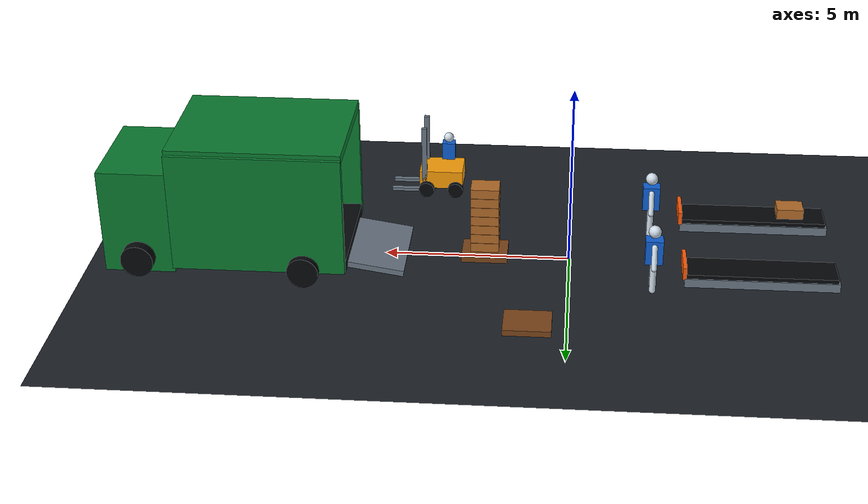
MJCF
<mujoco model="warehouse_palletizing_truck_loading_capability_v1">
  <compiler angle="degree"/>
  <option timestep="0.01" gravity="0 0 -9.81"/>
  <statistic center="0 0 1.2" extent="12"/>
  <visual><global offwidth="960" offheight="540"/><headlight ambient="0.42 0.42 0.44" diffuse="0.86 0.86 0.86"/></visual>
  <default><geom contype="0" conaffinity="0"/></default>
  <asset>
    <texture name="floor_tex" type="2d" builtin="checker" rgb1="0.08 0.10 0.13" rgb2="0.14 0.16 0.19" width="256" height="256"/>
    <material name="floor" texture="floor_tex" texrepeat="14 9"/>
    <material name="robot" rgba="0.06 0.38 0.84 1"/>
    <material name="shell" rgba="0.80 0.85 0.90 1"/>
    <material name="belt" rgba="0.02 0.025 0.035 1"/>
    <material name="steel" rgba="0.42 0.47 0.52 1"/>
    <material name="box" rgba="0.70 0.42 0.16 1"/>
    <material name="pallet" rgba="0.48 0.27 0.10 1"/>
    <material name="yellow" rgba="0.98 0.62 0.03 1"/>
    <material name="green" rgba="0.04 0.48 0.19 1"/>
    <material name="dark" rgba="0.02 0.03 0.04 1"/>
  </asset>
  <worldbody>
    <light pos="-2 -4 11" dir="0.1 0.2 -1"/>
    <geom type="plane" size="13 7 0.1" material="floor" contype="1" conaffinity="1"/>
    <camera name="overview" pos="-15 -15 10" xyaxes="0.73 -0.68 0 0.38 0.41 0.83"/>
    <camera name="pallet" pos="-1 -9 5" xyaxes="1 0 0 0 0.43 0.90"/>
    <camera name="truck" pos="11 -9 5.5" xyaxes="0.48 0.88 0 -0.39 0.21 0.90"/>

    <!-- Two representative production lanes; the full concept scales by repeating this cell. -->
    <geom type="box" pos="-5 -1.5 0.56" size="2.0 0.50 0.12" material="steel"/>
    <geom type="box" pos="-5 -1.5 0.73" size="1.95 0.46 0.055" material="belt"/>
    <geom type="box" pos="-3.0 -1.5 0.82" size="0.05 0.50 0.18" rgba="1 0.35 0.02 1"/>
    <geom type="box" pos="-5 1.5 0.56" size="2.0 0.50 0.12" material="steel"/>
    <geom type="box" pos="-5 1.5 0.73" size="1.95 0.46 0.055" material="belt"/>
    <geom type="box" pos="-3.0 1.5 0.82" size="0.05 0.50 0.18" rgba="1 0.35 0.02 1"/>

    <!-- Open-backed green truck with cargo bay, cab, wheels and loading ramp. -->
    <geom type="box" pos="8.2 0 0.45" size="2.3 1.7 0.15" material="dark"/>
    <geom type="box" pos="8.2 -1.75 2.0" size="2.3 0.10 1.65" material="green"/>
    <geom type="box" pos="8.2 1.75 2.0" size="2.3 0.10 1.65" material="green"/>
    <geom type="box" pos="8.2 0 3.65" size="2.3 1.75 0.12" material="green"/>
    <geom type="box" pos="10.45 0 2.0" size="0.05 1.55 1.40" material="dark"/>
    <geom type="box" pos="11.5 0 1.45" size="0.95 1.45 1.45" material="green"/>
    <geom type="box" pos="11.1 -1.46 1.95" size="0.45 0.035 0.42" rgba="0.08 0.30 0.38 1"/>
    <geom type="box" pos="5.2 0 0.20" size="0.80 1.25 0.08" material="steel" euler="0 -9 0"/>
    <geom type="cylinder" pos="7.0 -1.90 0.45" size="0.42 0.16" euler="90 0 0" material="dark"/>
    <geom type="cylinder" pos="7.0 1.90 0.45" size="0.42 0.16" euler="90 0 0" material="dark"/>
    <geom type="cylinder" pos="11.5 -1.60 0.45" size="0.44 0.16" euler="90 0 0" material="dark"/>
    <geom type="cylinder" pos="11.5 1.60 0.45" size="0.44 0.16" euler="90 0 0" material="dark"/>

    <body name="worker_1" mocap="true" pos="-2.2 -1.5 0">
      <geom type="box" pos="0 0 1.22" size="0.23 0.18 0.34" material="robot"/>
      <geom type="sphere" pos="0 0 1.77" size="0.17" material="shell"/>
      <geom type="capsule" fromto="0 -0.25 1.44 0 -0.46 0.92" size="0.075" material="shell"/>
      <geom type="capsule" fromto="0 0.25 1.44 0 0.46 0.92" size="0.075" material="shell"/>
      <geom type="capsule" fromto="0 -0.11 0.90 0 -0.15 0.10" size="0.085" material="shell"/>
      <geom type="capsule" fromto="0 0.11 0.90 0 0.15 0.10" size="0.085" material="shell"/>
    </body>
    <body name="worker_2" mocap="true" pos="-2.2 1.5 0">
      <geom type="box" pos="0 0 1.22" size="0.23 0.18 0.34" material="robot"/>
      <geom type="sphere" pos="0 0 1.77" size="0.17" material="shell"/>
      <geom type="capsule" fromto="0 -0.25 1.44 0 -0.46 0.92" size="0.075" material="shell"/>
      <geom type="capsule" fromto="0 0.25 1.44 0 0.46 0.92" size="0.075" material="shell"/>
      <geom type="capsule" fromto="0 -0.11 0.90 0 -0.15 0.10" size="0.085" material="shell"/>
      <geom type="capsule" fromto="0 0.11 0.90 0 0.15 0.10" size="0.085" material="shell"/>
    </body>
    <body name="active_carton" mocap="true" pos="-6.0 -1.5 0.95"><geom type="box" size="0.36 0.28 0.14" material="box"/></body>
    <body name="pallet_load" mocap="true" pos="2.3 0 0">
      <geom type="box" pos="0 0 0.16" size="0.62 0.50 0.08" material="pallet"/>
      <geom name="stack_1" type="box" pos="0 0 0.43" size="0.38 0.30 0.13" material="box"/>
      <geom name="stack_2" type="box" pos="0 0 0.70" size="0.38 0.30 0.13" material="box"/>
      <geom name="stack_3" type="box" pos="0 0 0.97" size="0.38 0.30 0.13" material="box"/>
      <geom name="stack_4" type="box" pos="0 0 1.24" size="0.38 0.30 0.13" material="box"/>
      <geom name="stack_5" type="box" pos="0 0 1.51" size="0.38 0.30 0.13" material="box"/>
      <geom name="stack_6" type="box" pos="0 0 1.78" size="0.38 0.30 0.13" material="box"/>
      <geom name="stack_7" type="box" pos="0 0 2.05" size="0.38 0.30 0.13" material="box"/>
    </body>
    <body name="replacement_pallet" mocap="true" pos="1.0 3.6 0"><geom type="box" pos="0 0 0.16" size="0.62 0.50 0.08" material="pallet"/></body>
    <body name="forklift" mocap="true" pos="3.8 -3.8 0">
      <geom type="box" pos="0 0 0.58" size="0.62 0.48 0.26" material="yellow"/>
      <geom type="box" pos="0.48 -0.42 1.18" size="0.07 0.06 1.02" material="steel"/>
      <geom type="box" pos="0.48 0.42 1.18" size="0.07 0.06 1.02" material="steel"/>
      <geom type="box" pos="0.82 -0.30 0.18" size="0.62 0.07 0.045" material="steel"/>
      <geom type="box" pos="0.82 0.30 0.18" size="0.62 0.07 0.045" material="steel"/>
      <geom type="cylinder" pos="-0.42 -0.52 0.31" size="0.22 0.10" euler="90 0 0" material="dark"/>
      <geom type="cylinder" pos="-0.42 0.52 0.31" size="0.22 0.10" euler="90 0 0" material="dark"/>
      <geom type="cylinder" pos="0.42 -0.52 0.31" size="0.22 0.10" euler="90 0 0" material="dark"/>
      <geom type="cylinder" pos="0.42 0.52 0.31" size="0.22 0.10" euler="90 0 0" material="dark"/>
      <geom type="box" pos="-0.2 0 1.35" size="0.18 0.15 0.25" material="robot"/>
      <geom type="sphere" pos="-0.2 0 1.74" size="0.14" material="shell"/>
    </body>
  </worldbody>
</mujoco>
